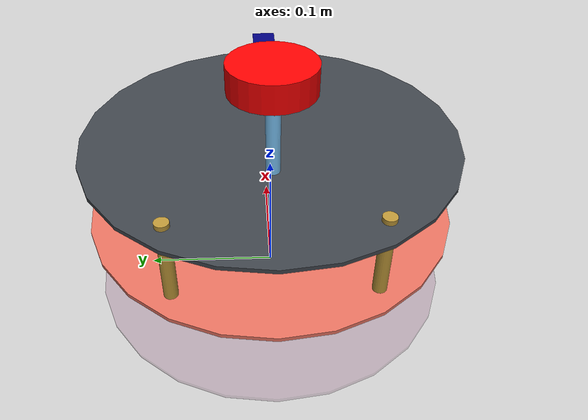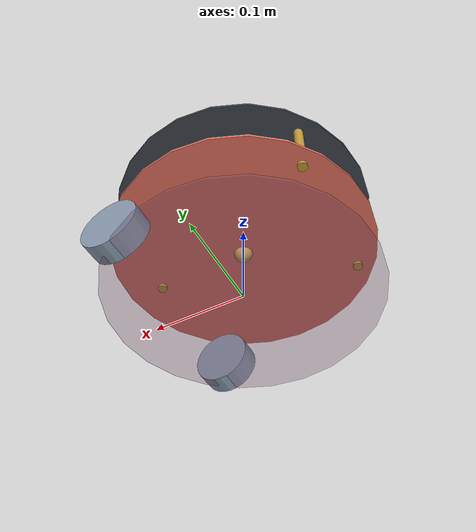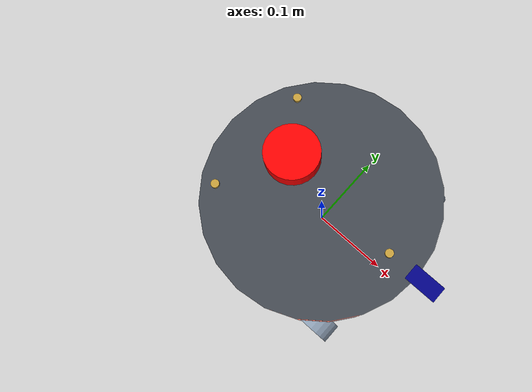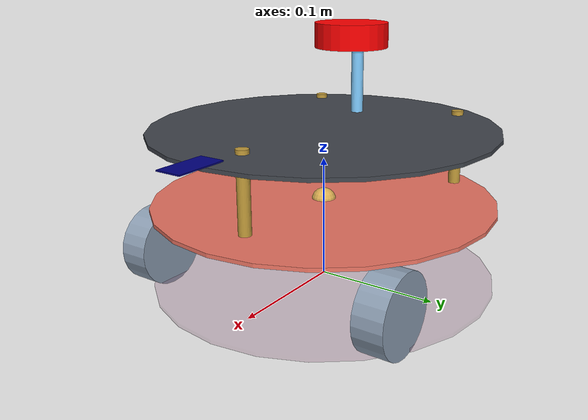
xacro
<?xml version="1.0"?>
<robot name="dome_x1" xmlns:xacro="http://www.ros.org/wiki/xacro">

  <!-- Parameters -->

  <!-- Robot structure dimensions -->
  <xacro:property name="plate_diameter" value="0.280" />
  <xacro:property name="plate_thickness" value="0.003" />
  <xacro:property name="bottom_plate_height" value="0.065" />
  <xacro:property name="top_plate_height" value="0.125" />
  <xacro:property name="base_link_x_offset" value="0.0" />

  <!-- Base link visualization marker -->
  <xacro:property name="base_link_marker_radius" value="0.01" />
  <xacro:property name="base_link_marker_length" value="0.1" />

  <!-- Wheel dimensions and positioning -->
  <xacro:property name="wheel_base" value="0.215" />
  <xacro:property name="wheel_diameter" value="0.0625" />
  <xacro:property name="wheel_width" value="0.024" />
  <xacro:property name="wheel_x_offset" value="0.08" />
  <xacro:property name="wheel_ground_clearance" value="0.005" />

  <!-- Support post dimensions and positions -->
  <xacro:property name="support_post_diameter" value="0.010" />
  <xacro:property name="support_post_height" value="0.070" />
  <xacro:property name="support_post_1_x" value="0.1" />
  <xacro:property name="support_post_1_y" value="0" />
  <xacro:property name="support_post_2_x" value="-0.1" />
  <xacro:property name="support_post_y_spread" value="0.070" />

  <!-- Laser sensor dimensions and positioning -->
  <xacro:property name="laser_x_offset" value="-0.040" />
  <xacro:property name="laser_z_offset" value="0.130" />
  <xacro:property name="laser_radius" value="0.03" />
  <xacro:property name="laser_height" value="0.02" />

  <!-- Laser tower dimensions and position -->
  <xacro:property name="laser_tower_radius" value="0.005" />
  <xacro:property name="laser_tower_height" value="0.05" />
  <xacro:property name="laser_tower_x_offset" value="-0.05" />
  <xacro:property name="laser_tower_y_offset" value="0" />
  <xacro:property name="laser_tower_z_offset" value="0.03" />

  <!-- IMU sensor dimensions and positioning -->
  <xacro:property name="imu_x_offset" value="-0.040" />
  <xacro:property name="imu_z_offset" value="0.020" />
  <xacro:property name="imu_length" value="0.020" />
  <xacro:property name="imu_width" value="0.020" />
  <xacro:property name="imu_height" value="0.010" />

  <!-- Front marker dimensions and positioning -->
  <xacro:property name="front_marker_x_offset" value="0.15" />
  <xacro:property name="front_marker_z_offset" value="0.065" />
  <xacro:property name="front_marker_length" value="0.04" />
  <xacro:property name="front_marker_width" value="0.02" />
  <xacro:property name="front_marker_thickness" value="0.001" />

  <!-- Materials -->
  <material name="slate">
  <color rgba="0.35 0.40 0.45 1.0"/>
</material>

<material name="red">
  <color rgba="1 0 0 1"/>
</material>

<material name="orange">
  <color rgba="1 0.5 0 1"/>
</material>

<material name="darkblue">
  <color rgba="0 0 0.5 1"/>
</material>

<material name="coral">
  <color rgba="0.91 0.45 0.38 1.0"/>
</material>

<material name="sage">
  <color rgba="0.56 0.68 0.53 1.0"/>
</material>

<material name="gold">
  <color rgba="0.85 0.68 0.32 1.0"/>
</material>

<material name="steel">
  <color rgba="0.55 0.62 0.70 1.0"/>
</material>

<material name="plum">
  <color rgba="0.56 0.35 0.48 0.3"/>
</material>

<material name="terracotta">
  <color rgba="0.78 0.45 0.35 1.0"/>
</material>

<material name="seafoam">
  <color rgba="0.42 0.70 0.65 1.0"/>
</material>

<material name="mustard">
  <color rgba="0.75 0.60 0.22 1.0"/>
</material>

<material name="dusty_rose">
  <color rgba="0.72 0.52 0.55 1.0"/>
</material>

<material name="charcoal">
  <color rgba="0.25 0.27 0.30 1.0"/>
</material>

<material name="light_blue">
  <color rgba="0.5 0.8 1.0 1.0"/>
</material>

  <!-- Base footprint (ground projection) -->
  <link name="base_footprint">
    <visual>
      <origin xyz="0 0 0" rpy="0 0 0"/>
      <geometry>
        <cylinder radius="${plate_diameter/2}" length="${plate_thickness}"/>
      </geometry>
      <material name="plum"/>
    </visual>
  </link>

  <!-- Base link (center of the robot) -->
  <link name="base_link">
      <visual>
        <geometry>
          <sphere radius="${base_link_marker_radius}" length="${base_link_marker_length}"/>
        </geometry>
        <material name="gold"/>
      </visual>
  </link>

  <joint name="base_link_to_base_footprint" type="fixed">
    <parent link="base_footprint"/>
    <child link="base_link"/>
    <origin xyz="${-base_link_x_offset} 0 ${bottom_plate_height}" rpy="0 0 0"/>
  </joint>

  <!-- Bottom plate -->
  <link name="bottom_plate">
    <visual>
      <origin xyz="0 0 0" rpy="0 0 0"/>
      <geometry>
        <cylinder radius="${plate_diameter/2}" length="${plate_thickness}"/>
      </geometry>
      <material name="coral"/>
    </visual>
    <collision>
      <origin xyz="0 0 0" rpy="0 0 0"/>
      <geometry>
        <cylinder radius="${plate_diameter/2}" length="${plate_thickness}"/>
      </geometry>
    </collision>
  </link>

  <joint name="base_link_to_bottom_plate" type="fixed">
    <parent link="base_link"/>
    <child link="bottom_plate"/>
    <origin xyz="${-base_link_x_offset} 0 0" rpy="0 0 0"/>
  </joint>

  <!-- Top plate -->
  <link name="top_plate">
    <visual>
      <origin xyz="0 0 0" rpy="0 0 0"/>
      <geometry>
        <cylinder radius="${plate_diameter/2}" length="${plate_thickness}"/>
      </geometry>
      <material name="charcoal"/>
    </visual>
    <collision>
      <origin xyz="0 0 0" rpy="0 0 0"/>
      <geometry>
        <cylinder radius="${plate_diameter/2}" length="${plate_thickness}"/>
      </geometry>
    </collision>
  </link>

  <joint name="base_link_to_top_plate" type="fixed">
    <parent link="base_link"/>
    <child link="top_plate"/>
    <origin xyz="${-base_link_x_offset} 0 ${top_plate_height - bottom_plate_height}" rpy="0 0 0"/>
  </joint>

  <!-- Support post macro -->
  <xacro:macro name="support_post" params="name x_pos y_pos">
    <link name="${name}">
      <visual>
        <origin xyz="0 0 0" rpy="0 0 0"/>
        <geometry>
          <cylinder radius="${support_post_diameter/2}" length="${support_post_height}"/>
        </geometry>
        <material name="mustard"/>
      </visual>
      <collision>
        <origin xyz="0 0 0" rpy="0 0 0"/>
        <geometry>
          <cylinder radius="${support_post_diameter/2}" length="${support_post_diameter}"/>
        </geometry>
      </collision>
    </link>

    <joint name="base_link_to_${name}" type="fixed">
      <parent link="base_link"/>
      <child link="${name}"/>
      <origin xyz="${x_pos} ${y_pos} ${(top_plate_height - bottom_plate_height)/2}" rpy="0 0 0"/>
    </joint>
  </xacro:macro>

  <!-- Support posts -->
  <xacro:support_post name="support_post_1" x_pos="${support_post_1_x}" y_pos="${support_post_1_y}"/>
  <xacro:support_post name="support_post_2" x_pos="${support_post_2_x}" y_pos="${support_post_y_spread}"/>
  <xacro:support_post name="support_post_3" x_pos="${support_post_2_x}" y_pos="${-support_post_y_spread}"/>

  <!-- Wheel macro -->
  <xacro:macro name="wheel" params="side reflect">
    <link name="${side}_wheel">
      <visual>
        <origin xyz="0 0 0" rpy="1.57 0 0"/>
        <geometry>
          <cylinder radius="${wheel_diameter/2}" length="${wheel_width}"/>
        </geometry>
        <material name="steel"/>
      </visual>
      <collision>
        <origin xyz="0 0 0" rpy="1.57 0 0"/>
        <geometry>
          <cylinder radius="${wheel_diameter/2}" length="${wheel_width}"/>
        </geometry>
      </collision>
    </link>

    <joint name="base_link_to_${side}_wheel" type="continuous">
      <parent link="base_link"/>
      <child link="${side}_wheel"/>
      <origin xyz="${wheel_x_offset} ${reflect * wheel_base/2} ${-wheel_diameter/2 - wheel_ground_clearance}" rpy="0 0 0"/>
      <axis xyz="0 1 0"/>
    </joint>
  </xacro:macro>

  <!-- Wheels -->
  <xacro:wheel side="left" reflect="1"/>
  <xacro:wheel side="right" reflect="-1"/>

  <!-- laser -->
  <link name="laser">
    <visual>
      <origin xyz="0 0 0" rpy="0 0 ${pi/2.0}"/>
      <geometry>
          <cylinder radius="${laser_radius}" length="${laser_height}"/>
      </geometry>
      <material name="red"/>
    </visual>
  </link>

  <link name="laser_tower">
    <visual>
      <origin xyz="0 0 0" rpy="0 0 0"/>
      <geometry>
          <cylinder radius="${laser_tower_radius}" length="${laser_tower_height}"/>
      </geometry>
      <material name="light_blue"/>
    </visual>
  </link>

  <joint name="laser_to_tower" type="fixed">
    <parent link="top_plate"/>
    <child link="laser_tower"/>
    <origin xyz="${laser_tower_x_offset} ${laser_tower_y_offset} ${laser_tower_z_offset}" rpy="0 0 0"/>
  </joint>

  <joint name="base_link_to_laser" type="fixed">
    <parent link="base_link"/>
    <child link="laser"/>
    <origin xyz="${laser_x_offset} 0 ${laser_z_offset}" rpy="0 0 ${-pi/2.0}"/>
  </joint>

  <!-- IMU_link -->
  <link name="imu_link">
    <visual>
      <origin xyz="0 0 0" rpy="0 0 0"/>
      <geometry>
        <box size="${imu_length} ${imu_width} ${imu_height}"/>
      </geometry>
      <material name="orange"/>
    </visual>
    <collision>
      <origin xyz="0 0 0" rpy="0 0 0"/>
      <geometry>
        <box size="${imu_length} ${imu_width} ${imu_height}"/>
      </geometry>
    </collision>
  </link>

  <joint name="base_link_to_imu" type="fixed">
    <parent link="base_link"/>
    <child link="imu_link"/>
    <origin xyz="${imu_x_offset} 0 ${imu_z_offset}" rpy="0 0 0"/>
  </joint>

  <!-- Front marker -->
  <link name="front_marker">
    <visual>
      <origin xyz="0 0 0" rpy="0 0 0"/>
      <geometry>
        <box size="${front_marker_length} ${front_marker_width} ${front_marker_thickness}"/>
      </geometry>
      <material name="darkblue"/>
    </visual>
  </link>

  <joint name="base_link_to_front_marker" type="fixed">
    <parent link="base_link"/>
    <child link="front_marker"/>
    <origin xyz="${front_marker_x_offset} 0 ${front_marker_z_offset}" rpy="0 0 0"/>
  </joint>

</robot>
